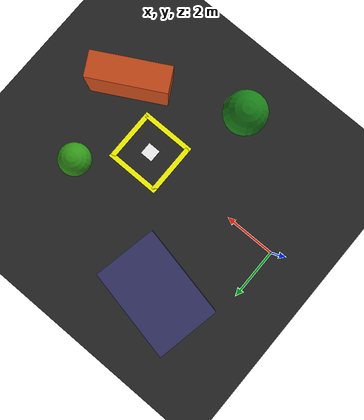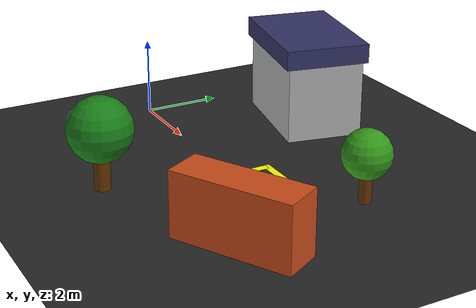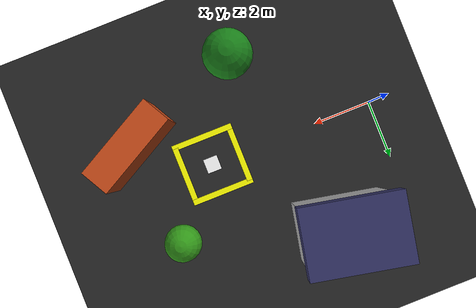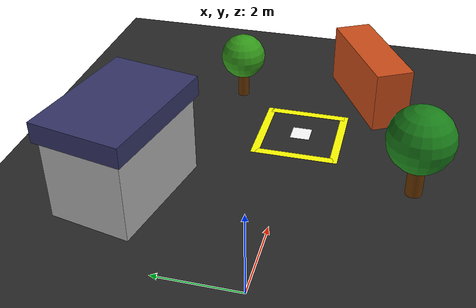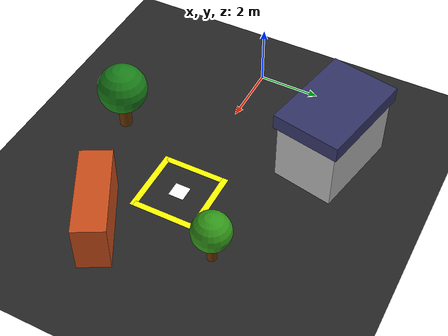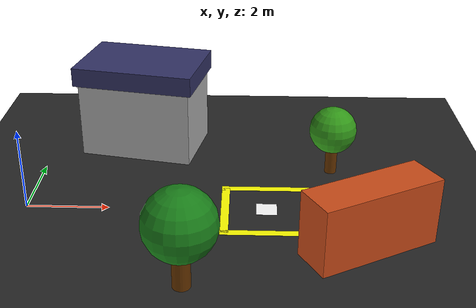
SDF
<?xml version="1.0" encoding="UTF-8"?>
<sdf version="1.9">
  <world name="inspection">
    <physics type="ode">
      <max_step_size>0.004</max_step_size>
      <real_time_factor>1.0</real_time_factor>
      <real_time_update_rate>250</real_time_update_rate>
    </physics>
    <gravity>0 0 -9.8</gravity>
    <magnetic_field>6e-06 2.3e-05 -4.2e-05</magnetic_field>
    <atmosphere type="adiabatic"/>

    <scene>
      <grid>false</grid>
      <ambient>0.6 0.6 0.6 1</ambient>
      <background>0.7 0.7 0.7 1</background>
      <shadows>true</shadows>
      <sky>
        <clouds>
          <speed>0.6</speed>
        </clouds>
      </sky>
    </scene>

    <!-- Ground Plane (matches PX4 default.sdf exactly) -->
    <model name="ground_plane">
      <static>true</static>
      <link name="link">
        <collision name="collision">
          <geometry>
            <plane>
              <normal>0 0 1</normal>
              <size>1 1</size>
            </plane>
          </geometry>
          <surface>
            <friction>
              <ode/>
            </friction>
            <bounce/>
            <contact/>
          </surface>
        </collision>
        <visual name="visual">
          <geometry>
            <plane>
              <normal>0 0 1</normal>
              <size>500 500</size>
            </plane>
          </geometry>
          <material>
            <ambient>0.15 0.15 0.15 1</ambient>
            <diffuse>0.15 0.15 0.15 1</diffuse>
            <specular>0.05 0.05 0.05 1</specular>
          </material>
        </visual>
        <pose>0 0 0 0 -0 0</pose>
        <inertial>
          <pose>0 0 0 0 -0 0</pose>
          <mass>1</mass>
          <inertia>
            <ixx>1</ixx>
            <ixy>0</ixy>
            <ixz>0</ixz>
            <iyy>1</iyy>
            <iyz>0</iyz>
            <izz>1</izz>
          </inertia>
        </inertial>
        <enable_wind>false</enable_wind>
      </link>
      <pose>0 0 0 0 -0 0</pose>
      <self_collide>false</self_collide>
    </model>

    <!-- Sun -->
    <light name="sunUTC" type="directional">
      <pose>0 0 500 0 -0 0</pose>
      <cast_shadows>true</cast_shadows>
      <intensity>1</intensity>
      <direction>0.001 0.625 -0.78</direction>
      <diffuse>0.904 0.904 0.904 1</diffuse>
      <specular>0.271 0.271 0.271 1</specular>
      <attenuation>
        <range>2000</range>
        <linear>0</linear>
        <constant>1</constant>
        <quadratic>0</quadratic>
      </attenuation>
      <spot>
        <inner_angle>0</inner_angle>
        <outer_angle>0</outer_angle>
        <falloff>0</falloff>
      </spot>
    </light>

    <!-- ArUco Marker -->
    <include>
      <uri>model://aruco_landing_pad</uri>
      <name>aruco_marker_1</name>
      <pose>5.8 0 0.011 0 0 0</pose>
    </include>

    <spherical_coordinates>
      <surface_model>EARTH_WGS84</surface_model>
      <world_frame_orientation>ENU</world_frame_orientation>
      <latitude_deg>47.397971057728974</latitude_deg>
      <longitude_deg>8.546163739800146</longitude_deg>
      <elevation>0</elevation>
    </spherical_coordinates>
    <!-- Realistic Polish Entities -->

    <!-- Tree 1 -->
    <model name='tree_1'>
      <pose>4.0 -3.0 0 0 0 0</pose>
      <static>true</static>
      <!-- Trunk -->
      <link name='trunk'>
        <pose>0 0 0.5 0 0 0</pose>
        <visual name='trunk_visual'>
          <geometry><cylinder><radius>0.2</radius><length>1.0</length></cylinder></geometry>
          <material>
            <ambient>0.4 0.2 0.0 1</ambient>
            <diffuse>0.4 0.2 0.0 1</diffuse>
          </material>
        </visual>
        <collision name='trunk_collision'>
          <geometry><cylinder><radius>0.2</radius><length>1.0</length></cylinder></geometry>
        </collision>
      </link>
      <!-- Leaves -->
      <link name='leaves'>
        <pose>0 0 1.5 0 0 0</pose>
        <visual name='leaves_visual'>
          <geometry><sphere><radius>0.8</radius></sphere></geometry>
          <material>
            <ambient>0.1 0.5 0.1 1</ambient>
            <diffuse>0.1 0.5 0.1 1</diffuse>
          </material>
        </visual>
        <collision name='leaves_collision'>
          <geometry><sphere><radius>0.8</radius></sphere></geometry>
        </collision>
      </link>
    </model>

    <!-- Tree 2 -->
    <model name='tree_2'>
      <pose>7.5 2.0 0 0 0 0</pose>
      <static>true</static>
      <link name='trunk'>
        <pose>0 0 0.4 0 0 0</pose>
        <visual name='trunk_visual'>
          <geometry><cylinder><radius>0.15</radius><length>0.8</length></cylinder></geometry>
          <material>
            <ambient>0.4 0.2 0.0 1</ambient>
            <diffuse>0.4 0.2 0.0 1</diffuse>
          </material>
        </visual>
      </link>
      <link name='leaves'>
        <pose>0 0 1.2 0 0 0</pose>
        <visual name='leaves_visual'>
          <geometry><sphere><radius>0.6</radius></sphere></geometry>
          <material>
            <ambient>0.2 0.6 0.1 1</ambient>
            <diffuse>0.2 0.6 0.1 1</diffuse>
          </material>
        </visual>
      </link>
    </model>

    <!-- Building / Warehouse -->
    <model name='warehouse'>
      <pose>2.5 3.5 0 0 0 -0.2</pose>
      <static>true</static>
      <link name='base'>
        <pose>0 0 1.0 0 0 0</pose>
        <visual name='base_visual'>
          <geometry><box><size>3.0 2.0 2.0</size></box></geometry>
          <material>
            <ambient>0.7 0.7 0.7 1</ambient>
            <diffuse>0.7 0.7 0.7 1</diffuse>
          </material>
        </visual>
        <collision name='base_collision'>
          <geometry><box><size>3.0 2.0 2.0</size></box></geometry>
        </collision>
      </link>
      <link name='roof'>
        <pose>0 0 2.25 0 0 0</pose>
        <visual name='roof_visual'>
          <geometry><box><size>3.2 2.2 0.5</size></box></geometry>
          <material>
            <ambient>0.2 0.2 0.4 1</ambient>
            <diffuse>0.2 0.2 0.4 1</diffuse>
          </material>
        </visual>
        <collision name='roof_collision'>
          <geometry><box><size>3.2 2.2 0.5</size></box></geometry>
        </collision>
      </link>
    </model>

    <!-- Shipping Container -->
    <model name='shipping_container'>
      <pose>8.0 -1.5 0 0 0 0.5</pose>
      <static>true</static>
      <link name='body'>
        <pose>0 0 0.8 0 0 0</pose>
        <visual name='visual'>
          <geometry><box><size>3.0 1.0 1.6</size></box></geometry>
          <material>
            <ambient>0.8 0.3 0.1 1</ambient>
            <diffuse>0.8 0.3 0.1 1</diffuse>
          </material>
        </visual>
        <collision name='collision'>
          <geometry><box><size>3.0 1.0 1.6</size></box></geometry>
        </collision>
      </link>
    </model>

    <!-- Landing Zone Markings -->
    <model name='lz_border'>
      <pose>5.8 0 0.005 0 0 0</pose>
      <static>true</static>
      <link name='border'>
        <visual name='v1'>
          <pose>0 1.0 0 0 0 0</pose>
          <geometry><box><size>2.2 0.2 0.001</size></box></geometry>
          <material><ambient>1 1 0 1</ambient><diffuse>1 1 0 1</diffuse></material>
        </visual>
        <visual name='v2'>
          <pose>0 -1.0 0 0 0 0</pose>
          <geometry><box><size>2.2 0.2 0.001</size></box></geometry>
          <material><ambient>1 1 0 1</ambient><diffuse>1 1 0 1</diffuse></material>
        </visual>
        <visual name='v3'>
          <pose>1.0 0 0 0 0 0</pose>
          <geometry><box><size>0.2 2.0 0.001</size></box></geometry>
          <material><ambient>1 1 0 1</ambient><diffuse>1 1 0 1</diffuse></material>
        </visual>
        <visual name='v4'>
          <pose>-1.0 0 0 0 0 0</pose>
          <geometry><box><size>0.2 2.0 0.001</size></box></geometry>
          <material><ambient>1 1 0 1</ambient><diffuse>1 1 0 1</diffuse></material>
        </visual>
      </link>
    </model>

  </world>
</sdf>

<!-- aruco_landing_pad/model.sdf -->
<sdf version='1.9'>
  <model name='aruco_landing_pad'>
    <static>true</static>
    <link name="link">
      <collision name="collision">
        <geometry>
          <box>
            <size>0.5 0.5 0.02</size>
          </box>
        </geometry>
      </collision>
      <visual name="visual">
        <pose>0 0 0.011 0 0 0</pose>
        <geometry>
          <plane>
            <normal>0 0 1</normal>
            <size>0.5 0.5</size>
          </plane>
        </geometry>
        <material>
          <diffuse>1 1 1 1</diffuse>
          <specular>0 0 0 1</specular>
          <pbr>
            <metal>
              <albedo_map>model://aruco_landing_pad/aruco_marker_0.png</albedo_map>
              <roughness>1.0</roughness>
              <metalness>0.0</metalness>
            </metal>
          </pbr>
        </material>
      </visual>
    </link>
  </model>
</sdf>
